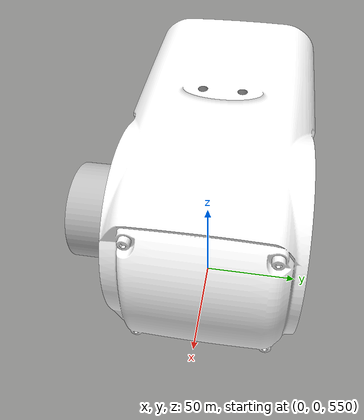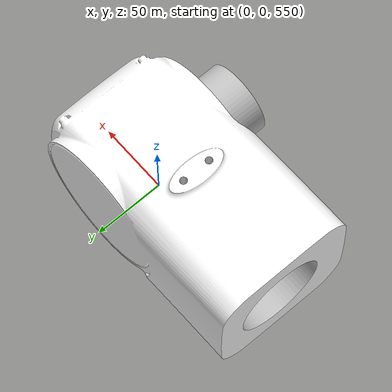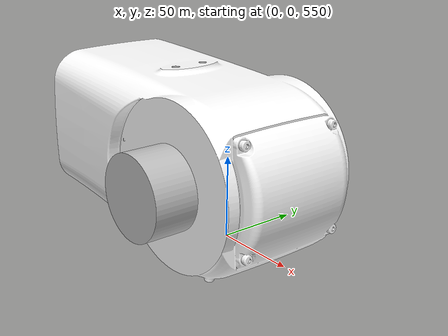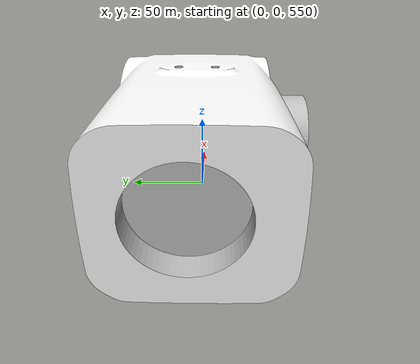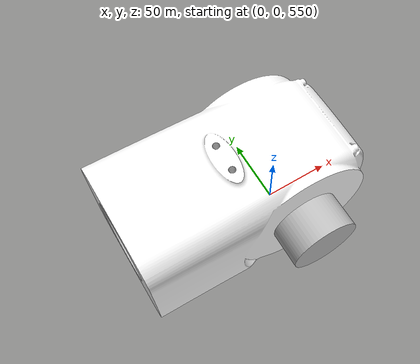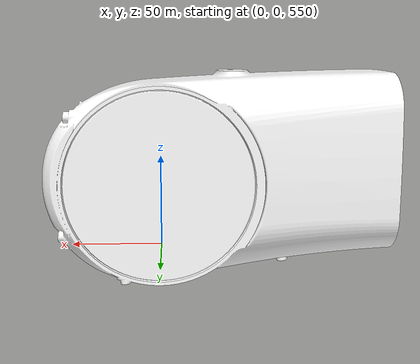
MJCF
<mujoco model="J3">
  <default>
    <default class="visual">
      <geom group="2" type="mesh" contype="0" conaffinity="0"/>
    </default>
    <default class="collision">
      <geom group="3" type="mesh"/>
    </default>
  </default>
  <asset>
    <material name="255,255,255" specular="0.5" shininess="0.5" rgba="1.000000 1.000000 1.000000 1.0"/>
    <material name="189,189,189" specular="0.5" shininess="0.5" rgba="0.741176 0.741176 0.741176 1.0"/>
    <mesh file="J3_0.obj"/>
    <mesh file="J3_1.obj"/>
  </asset>
  <worldbody>
    <body name="J3">
      <geom mesh="J3_0" material="189,189,189" class="visual"/>
      <geom mesh="J3_1" material="255,255,255" class="visual"/>
      <geom mesh="J3_0" class="collision"/>
      <geom mesh="J3_1" class="collision"/>
    </body>
  </worldbody>
</mujoco>
